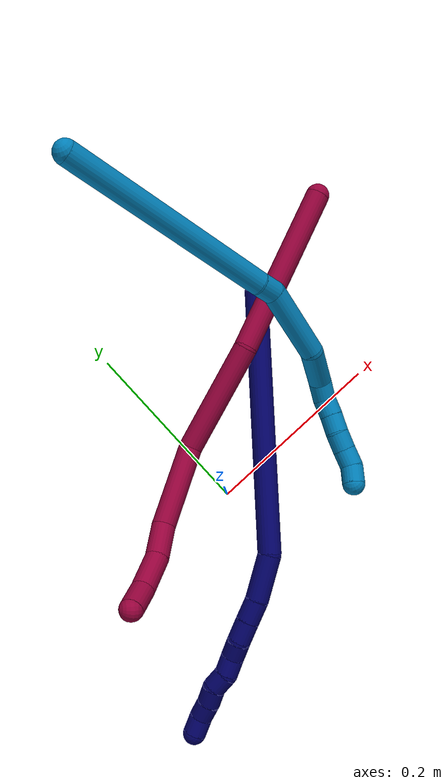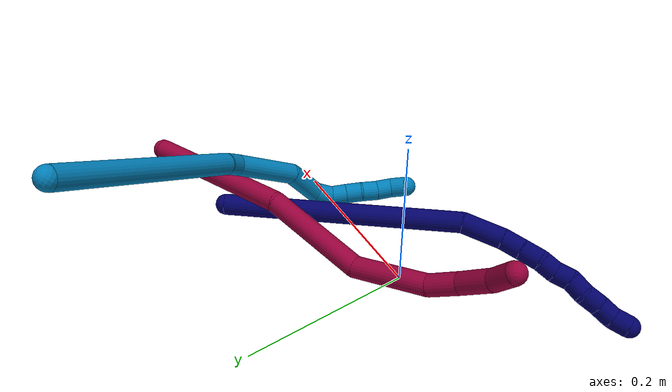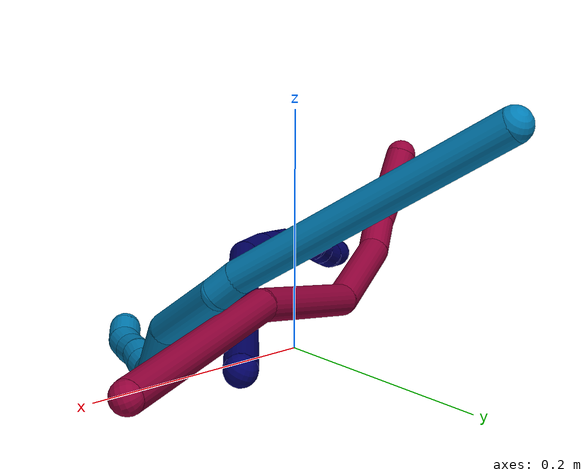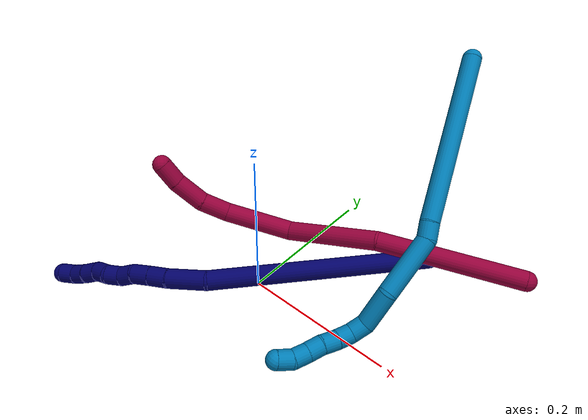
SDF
<sdf version="1.7">
 <world name="default">
  <model name="photoneo_s_sensor">
   <static>1</static>
   <pose>0 0 2 1.57079 1.57079 3.14159</pose>
   <link name="link">
    <inertial><mass>0.1</mass></inertial>
    <sensor name="sensor" type="depth">
     <update_rate>30</update_rate>
     <camera>
      <horizontal_fov>1.22</horizontal_fov>
      <image><width>1920</width><height>1200</height><format>B8G8R8</format></image>
      <clip><near>0.1</near><far>4</far></clip>
      <depth_camera><output>points</output></depth_camera>
     </camera>
     <plugin name="camera_plugin" filename="libgazebo_ros_depth_camera.so">
      <baseline>0.2</baseline>
      <alwaysOn>1</alwaysOn>
      <updateRate>0.0</updateRate>
      <cameraName>camera_ir</cameraName>
      <imageTopicName>/camera/color/image_raw</imageTopicName>
      <cameraInfoTopicName>/camera/color/camera_info</cameraInfoTopicName>
      <depthImageTopicName>/camera/depth/image_raw</depthImageTopicName>
      <depthImageCameraInfoTopicName>/camera/depth/camera_info</depthImageCameraInfoTopicName>
      <pointCloudTopicName>/camera/depth/points</pointCloudTopicName>
      <frameName>fr_optical</frameName>
      <pointCloudCutoff>0.1</pointCloudCutoff>
      <pointCloudCutoffMax>2.0</pointCloudCutoffMax>
      <distortionK1>0</distortionK1>
      <distortionK2>0</distortionK2>
      <distortionK3>0</distortionK3>
      <distortionT1>0</distortionT1>
      <distortionT2>0</distortionT2>
      <CxPrime>0</CxPrime>
      <Cx>0</Cx>
      <Cy>0</Cy>
      <focalLength>0</focalLength>
      <hackBaseline>0</hackBaseline>
     </plugin>
    </sensor>
   </link>
  </model>
  <model name="bin">
   <static>1</static>
   <link name="bottom">
    <collision name="collision-bottom">
     <pose>0 0 -0.01 0 -0 0</pose>
     <geometry><box><size>0.8 0.6 0.02</size></box></geometry>
     <surface>
      <friction><ode><mu>100</mu><mu2>100</mu2></ode></friction>
      <contact><collide_bitmask>65535</collide_bitmask></contact>
     </surface>
    </collision>
   </link>
   <link name="west_wall">
    <collision name="collision-west_wall">
     <pose>-0.41 0 0.1 0 -0 0</pose>
     <geometry><box><size>0.02 0.6 0.2</size></box></geometry>
     <surface>
      <friction><ode><mu>100</mu><mu2>100</mu2></ode></friction>
      <contact><collide_bitmask>65535</collide_bitmask></contact>
     </surface>
    </collision>
   </link>
   <link name="east_wall">
    <collision name="collision-east_wall">
     <pose>0.41 0 0.1 0 -0 0</pose>
     <geometry><box><size>0.02 0.6 0.2</size></box></geometry>
     <surface>
      <friction><ode><mu>100</mu><mu2>100</mu2></ode></friction>
      <contact><collide_bitmask>65535</collide_bitmask></contact>
     </surface>
    </collision>
   </link>
   <link name="south_wall">
    <collision name="collision-south_wall">
     <pose>0 -0.31 0.1 0 -0 0</pose>
     <geometry><box><size>0.8 0.02 0.2</size></box></geometry>
     <surface>
      <friction><ode><mu>100</mu><mu2>100</mu2></ode></friction>
      <contact><collide_bitmask>65535</collide_bitmask></contact>
     </surface>
    </collision>
   </link>
   <link name="north_wall">
    <collision name="collision-north_wall">
     <pose>0 0.31 0.1 0 -0 0</pose>
     <geometry><box><size>0.8 0.02 0.2</size></box></geometry>
     <surface>
      <friction><ode><mu>100</mu><mu2>100</mu2></ode></friction>
      <contact><collide_bitmask>65535</collide_bitmask></contact>
     </surface>
    </collision>
   </link>
  </model>
  <model name="7">
   <static>0</static>
   <link name="7">
    <collision name="collision-cylinder-e_1_1_4">
     <pose>-0.136871 -0.021264 0.024257 0.719749 -1.33934 -0.579042</pose>
     <geometry><cylinder><radius>0.0125</radius><length>0.281242</length></cylinder></geometry>
     <surface>
      <friction><ode><mu>1.16</mu><mu2>1.16</mu2><slip1>0</slip1><slip2>0</slip2></ode></friction>
      <contact><ode><kp>1e+06</kp><kd>1</kd><max_vel>0</max_vel><min_depth>0.001</min_depth></ode></contact>
     </surface>
    </collision>
    <visual name="visual-cylinder-e_1_1_4">
     <pose>-0.136871 -0.021264 0.024257 0.719749 -1.33934 -0.579042</pose>
     <geometry><cylinder><radius>0.0125</radius><length>0.281242</length></cylinder></geometry>
     <material><ambient>0.003922 0 0.403922 1</ambient></material>
    </visual>
    <collision name="collision-cylinder-e_2_4_5">
     <pose>-0.295477 -0.054249 0.051722 1.30365 -1.06102 -0.841761</pose>
     <geometry><cylinder><radius>0.0125</radius><length>0.049804</length></cylinder></geometry>
     <surface>
      <friction><ode><mu>1.16</mu><mu2>1.16</mu2><slip1>0</slip1><slip2>0</slip2></ode></friction>
      <contact><ode><kp>1e+06</kp><kd>1</kd><max_vel>0</max_vel><min_depth>0.001</min_depth></ode></contact>
     </surface>
    </collision>
    <visual name="visual-cylinder-e_2_4_5">
     <pose>-0.295477 -0.054249 0.051722 1.30365 -1.06102 -0.841761</pose>
     <geometry><cylinder><radius>0.0125</radius><length>0.049804</length></cylinder></geometry>
     <material><ambient>0.003922 0 0.403922 1</ambient></material>
    </visual>
    <collision name="collision-cylinder-e_3_5_6">
     <pose>-0.326843 -0.07317 0.056015 1.42108 -0.923397 -0.809051</pose>
     <geometry><cylinder><radius>0.0125</radius><length>0.024146</length></cylinder></geometry>
     <surface>
      <friction><ode><mu>1.16</mu><mu2>1.16</mu2><slip1>0</slip1><slip2>0</slip2></ode></friction>
      <contact><ode><kp>1e+06</kp><kd>1</kd><max_vel>0</max_vel><min_depth>0.001</min_depth></ode></contact>
     </surface>
    </collision>
    <visual name="visual-cylinder-e_3_5_6">
     <pose>-0.326843 -0.07317 0.056015 1.42108 -0.923397 -0.809051</pose>
     <geometry><cylinder><radius>0.0125</radius><length>0.024146</length></cylinder></geometry>
     <material><ambient>0.003922 0 0.403922 1</ambient></material>
    </visual>
    <collision name="collision-cylinder-e_4_6_7">
     <pose>-0.345851 -0.087349 0.05844 1.38125 -0.92228 -0.779233</pose>
     <geometry><cylinder><radius>0.0125</radius><length>0.023532</length></cylinder></geometry>
     <surface>
      <friction><ode><mu>1.16</mu><mu2>1.16</mu2><slip1>0</slip1><slip2>0</slip2></ode></friction>
      <contact><ode><kp>1e+06</kp><kd>1</kd><max_vel>0</max_vel><min_depth>0.001</min_depth></ode></contact>
     </surface>
    </collision>
    <visual name="visual-cylinder-e_4_6_7">
     <pose>-0.345851 -0.087349 0.05844 1.38125 -0.92228 -0.779233</pose>
     <geometry><cylinder><radius>0.0125</radius><length>0.023532</length></cylinder></geometry>
     <material><ambient>0.003922 0 0.403922 1</ambient></material>
    </visual>
    <collision name="collision-cylinder-e_5_7_8">
     <pose>-0.362118 -0.100787 0.06372 1.02302 -0.738676 -0.427939</pose>
     <geometry><cylinder><radius>0.0125</radius><length>0.020467</length></cylinder></geometry>
     <surface>
      <friction><ode><mu>1.16</mu><mu2>1.16</mu2><slip1>0</slip1><slip2>0</slip2></ode></friction>
      <contact><ode><kp>1e+06</kp><kd>1</kd><max_vel>0</max_vel><min_depth>0.001</min_depth></ode></contact>
     </surface>
    </collision>
    <visual name="visual-cylinder-e_5_7_8">
     <pose>-0.362118 -0.100787 0.06372 1.02302 -0.738676 -0.427939</pose>
     <geometry><cylinder><radius>0.0125</radius><length>0.020467</length></cylinder></geometry>
     <material><ambient>0.003922 0 0.403922 1</ambient></material>
    </visual>
    <collision name="collision-cylinder-e_6_8_9">
     <pose>-0.377366 -0.112726 0.068657 1.39092 -0.982979 -0.840282</pose>
     <geometry><cylinder><radius>0.0125</radius><length>0.020088</length></cylinder></geometry>
     <surface>
      <friction><ode><mu>1.16</mu><mu2>1.16</mu2><slip1>0</slip1><slip2>0</slip2></ode></friction>
      <contact><ode><kp>1e+06</kp><kd>1</kd><max_vel>0</max_vel><min_depth>0.001</min_depth></ode></contact>
     </surface>
    </collision>
    <visual name="visual-cylinder-e_6_8_9">
     <pose>-0.377366 -0.112726 0.068657 1.39092 -0.982979 -0.840282</pose>
     <geometry><cylinder><radius>0.0125</radius><length>0.020088</length></cylinder></geometry>
     <material><ambient>0.003922 0 0.403922 1</ambient></material>
    </visual>
    <collision name="collision-cylinder-e_7_9_10">
     <pose>-0.391381 -0.126509 0.070594 1.45799 -0.59513 -0.534666</pose>
     <geometry><cylinder><radius>0.0125</radius><length>0.020182</length></cylinder></geometry>
     <surface>
      <friction><ode><mu>1.16</mu><mu2>1.16</mu2><slip1>0</slip1><slip2>0</slip2></ode></friction>
      <contact><ode><kp>1e+06</kp><kd>1</kd><max_vel>0</max_vel><min_depth>0.001</min_depth></ode></contact>
     </surface>
    </collision>
    <visual name="visual-cylinder-e_7_9_10">
     <pose>-0.391381 -0.126509 0.070594 1.45799 -0.59513 -0.534666</pose>
     <geometry><cylinder><radius>0.0125</radius><length>0.020182</length></cylinder></geometry>
     <material><ambient>0.003922 0 0.403922 1</ambient></material>
    </visual>
    <collision name="collision-cylinder-e_8_10_11">
     <pose>-0.404063 -0.140987 0.075371 1.01486 -0.768287 -0.442143</pose>
     <geometry><cylinder><radius>0.0125</radius><length>0.020217</length></cylinder></geometry>
     <surface>
      <friction><ode><mu>1.16</mu><mu2>1.16</mu2><slip1>0</slip1><slip2>0</slip2></ode></friction>
      <contact><ode><kp>1e+06</kp><kd>1</kd><max_vel>0</max_vel><min_depth>0.001</min_depth></ode></contact>
     </surface>
    </collision>
    <visual name="visual-cylinder-e_8_10_11">
     <pose>-0.404063 -0.140987 0.075371 1.01486 -0.768287 -0.442143</pose>
     <geometry><cylinder><radius>0.0125</radius><length>0.020217</length></cylinder></geometry>
     <material><ambient>0.003922 0 0.403922 1</ambient></material>
    </visual>
    <collision name="collision-cylinder-e_9_11_12">
     <pose>-0.417537 -0.154291 0.082388 1.15114 -0.69046 -0.458493</pose>
     <geometry><cylinder><radius>0.0125</radius><length>0.020254</length></cylinder></geometry>
     <surface>
      <friction><ode><mu>1.16</mu><mu2>1.16</mu2><slip1>0</slip1><slip2>0</slip2></ode></friction>
      <contact><ode><kp>1e+06</kp><kd>1</kd><max_vel>0</max_vel><min_depth>0.001</min_depth></ode></contact>
     </surface>
    </collision>
    <visual name="visual-cylinder-e_9_11_12">
     <pose>-0.417537 -0.154291 0.082388 1.15114 -0.69046 -0.458493</pose>
     <geometry><cylinder><radius>0.0125</radius><length>0.020254</length></cylinder></geometry>
     <material><ambient>0.003922 0 0.403922 1</ambient></material>
    </visual>
    <collision name="collision-cylinder-e_10_12_2">
     <pose>-0.432172 -0.16711 0.086726 1.37012 -0.953845 -0.798961</pose>
     <geometry><cylinder><radius>0.0125</radius><length>0.020069</length></cylinder></geometry>
     <surface>
      <friction><ode><mu>1.16</mu><mu2>1.16</mu2><slip1>0</slip1><slip2>0</slip2></ode></friction>
      <contact><ode><kp>1e+06</kp><kd>1</kd><max_vel>0</max_vel><min_depth>0.001</min_depth></ode></contact>
     </surface>
    </collision>
    <visual name="visual-cylinder-e_10_12_2">
     <pose>-0.432172 -0.16711 0.086726 1.37012 -0.953845 -0.798961</pose>
     <geometry><cylinder><radius>0.0125</radius><length>0.020069</length></cylinder></geometry>
     <material><ambient>0.003922 0 0.403922 1</ambient></material>
    </visual>
    <collision name="collision-sphere-2">
     <pose>-0.440357 -0.172799 0.087884 0 -0 0</pose>
     <geometry><sphere><radius>0.0125</radius></sphere></geometry>
     <surface>
      <friction><ode><mu>1.16</mu><mu2>1.16</mu2><slip1>0</slip1><slip2>0</slip2></ode></friction>
      <contact><ode><kp>1e+06</kp><kd>1</kd><max_vel>0</max_vel><min_depth>0.001</min_depth></ode></contact>
     </surface>
    </collision>
    <visual name="visual-sphere-2">
     <pose>-0.440357 -0.172799 0.087884 0 -0 0</pose>
     <geometry><sphere><radius>0.0125</radius></sphere></geometry>
     <material><ambient>0.003922 0 0.403922 1</ambient></material>
    </visual>
    <collision name="collision-sphere-12">
     <pose>-0.423987 -0.161421 0.085569 0 -0 0</pose>
     <geometry><sphere><radius>0.0125</radius></sphere></geometry>
     <surface>
      <friction><ode><mu>1.16</mu><mu2>1.16</mu2><slip1>0</slip1><slip2>0</slip2></ode></friction>
      <contact><ode><kp>1e+06</kp><kd>1</kd><max_vel>0</max_vel><min_depth>0.001</min_depth></ode></contact>
     </surface>
    </collision>
    <visual name="visual-sphere-12">
     <pose>-0.423987 -0.161421 0.085569 0 -0 0</pose>
     <geometry><sphere><radius>0.0125</radius></sphere></geometry>
     <material><ambient>0.003922 0 0.403922 1</ambient></material>
    </visual>
    <collision name="collision-sphere-11">
     <pose>-0.411088 -0.147161 0.079207 0 -0 0</pose>
     <geometry><sphere><radius>0.0125</radius></sphere></geometry>
     <surface>
      <friction><ode><mu>1.16</mu><mu2>1.16</mu2><slip1>0</slip1><slip2>0</slip2></ode></friction>
      <contact><ode><kp>1e+06</kp><kd>1</kd><max_vel>0</max_vel><min_depth>0.001</min_depth></ode></contact>
     </surface>
    </collision>
    <visual name="visual-sphere-11">
     <pose>-0.411088 -0.147161 0.079207 0 -0 0</pose>
     <geometry><sphere><radius>0.0125</radius></sphere></geometry>
     <material><ambient>0.003922 0 0.403922 1</ambient></material>
    </visual>
    <collision name="collision-sphere-10">
     <pose>-0.397038 -0.134812 0.071534 0 -0 0</pose>
     <geometry><sphere><radius>0.0125</radius></sphere></geometry>
     <surface>
      <friction><ode><mu>1.16</mu><mu2>1.16</mu2><slip1>0</slip1><slip2>0</slip2></ode></friction>
      <contact><ode><kp>1e+06</kp><kd>1</kd><max_vel>0</max_vel><min_depth>0.001</min_depth></ode></contact>
     </surface>
    </collision>
    <visual name="visual-sphere-10">
     <pose>-0.397038 -0.134812 0.071534 0 -0 0</pose>
     <geometry><sphere><radius>0.0125</radius></sphere></geometry>
     <material><ambient>0.003922 0 0.403922 1</ambient></material>
    </visual>
    <collision name="collision-sphere-9">
     <pose>-0.385724 -0.118206 0.069653 0 -0 0</pose>
     <geometry><sphere><radius>0.0125</radius></sphere></geometry>
     <surface>
      <friction><ode><mu>1.16</mu><mu2>1.16</mu2><slip1>0</slip1><slip2>0</slip2></ode></friction>
      <contact><ode><kp>1e+06</kp><kd>1</kd><max_vel>0</max_vel><min_depth>0.001</min_depth></ode></contact>
     </surface>
    </collision>
    <visual name="visual-sphere-9">
     <pose>-0.385724 -0.118206 0.069653 0 -0 0</pose>
     <geometry><sphere><radius>0.0125</radius></sphere></geometry>
     <material><ambient>0.003922 0 0.403922 1</ambient></material>
    </visual>
    <collision name="collision-sphere-4">
     <pose>-0.273742 -0.042528 0.048514 0 -0 0</pose>
     <geometry><sphere><radius>0.0125</radius></sphere></geometry>
     <surface>
      <friction><ode><mu>1.16</mu><mu2>1.16</mu2><slip1>0</slip1><slip2>0</slip2></ode></friction>
      <contact><ode><kp>1e+06</kp><kd>1</kd><max_vel>0</max_vel><min_depth>0.001</min_depth></ode></contact>
     </surface>
    </collision>
    <visual name="visual-sphere-4">
     <pose>-0.273742 -0.042528 0.048514 0 -0 0</pose>
     <geometry><sphere><radius>0.0125</radius></sphere></geometry>
     <material><ambient>0.003922 0 0.403922 1</ambient></material>
    </visual>
    <collision name="collision-sphere-1">
     <geometry><sphere><radius>0.0125</radius></sphere></geometry>
     <surface>
      <friction><ode><mu>1.16</mu><mu2>1.16</mu2><slip1>0</slip1><slip2>0</slip2></ode></friction>
      <contact><ode><kp>1e+06</kp><kd>1</kd><max_vel>0</max_vel><min_depth>0.001</min_depth></ode></contact>
     </surface>
    </collision>
    <visual name="visual-sphere-1">
     <geometry><sphere><radius>0.0125</radius></sphere></geometry>
     <material><ambient>0.003922 0 0.403922 1</ambient></material>
    </visual>
    <collision name="collision-sphere-8">
     <pose>-0.369008 -0.107246 0.06766 0 -0 0</pose>
     <geometry><sphere><radius>0.0125</radius></sphere></geometry>
     <surface>
      <friction><ode><mu>1.16</mu><mu2>1.16</mu2><slip1>0</slip1><slip2>0</slip2></ode></friction>
      <contact><ode><kp>1e+06</kp><kd>1</kd><max_vel>0</max_vel><min_depth>0.001</min_depth></ode></contact>
     </surface>
    </collision>
    <visual name="visual-sphere-8">
     <pose>-0.369008 -0.107246 0.06766 0 -0 0</pose>
     <geometry><sphere><radius>0.0125</radius></sphere></geometry>
     <material><ambient>0.003922 0 0.403922 1</ambient></material>
    </visual>
    <collision name="collision-sphere-5">
     <pose>-0.317213 -0.06597 0.054929 0 -0 0</pose>
     <geometry><sphere><radius>0.0125</radius></sphere></geometry>
     <surface>
      <friction><ode><mu>1.16</mu><mu2>1.16</mu2><slip1>0</slip1><slip2>0</slip2></ode></friction>
      <contact><ode><kp>1e+06</kp><kd>1</kd><max_vel>0</max_vel><min_depth>0.001</min_depth></ode></contact>
     </surface>
    </collision>
    <visual name="visual-sphere-5">
     <pose>-0.317213 -0.06597 0.054929 0 -0 0</pose>
     <geometry><sphere><radius>0.0125</radius></sphere></geometry>
     <material><ambient>0.003922 0 0.403922 1</ambient></material>
    </visual>
    <collision name="collision-sphere-6">
     <pose>-0.336473 -0.08037 0.057102 0 -0 0</pose>
     <geometry><sphere><radius>0.0125</radius></sphere></geometry>
     <surface>
      <friction><ode><mu>1.16</mu><mu2>1.16</mu2><slip1>0</slip1><slip2>0</slip2></ode></friction>
      <contact><ode><kp>1e+06</kp><kd>1</kd><max_vel>0</max_vel><min_depth>0.001</min_depth></ode></contact>
     </surface>
    </collision>
    <visual name="visual-sphere-6">
     <pose>-0.336473 -0.08037 0.057102 0 -0 0</pose>
     <geometry><sphere><radius>0.0125</radius></sphere></geometry>
     <material><ambient>0.003922 0 0.403922 1</ambient></material>
    </visual>
    <collision name="collision-sphere-7">
     <pose>-0.355228 -0.094328 0.059779 0 -0 0</pose>
     <geometry><sphere><radius>0.0125</radius></sphere></geometry>
     <surface>
      <friction><ode><mu>1.16</mu><mu2>1.16</mu2><slip1>0</slip1><slip2>0</slip2></ode></friction>
      <contact><ode><kp>1e+06</kp><kd>1</kd><max_vel>0</max_vel><min_depth>0.001</min_depth></ode></contact>
     </surface>
    </collision>
    <visual name="visual-sphere-7">
     <pose>-0.355228 -0.094328 0.059779 0 -0 0</pose>
     <geometry><sphere><radius>0.0125</radius></sphere></geometry>
     <material><ambient>0.003922 0 0.403922 1</ambient></material>
    </visual>
    <inertial>
     <pose>-0.23486 -0.057428 0.042333 0 -0 0</pose>
     <mass>0.5</mass>
     <inertia><ixx>9.1e-05</ixx><ixy>0</ixy><ixz>0</ixz><iyy>0.00159</iyy><iyz>0</iyz><izz>0.002138</izz></inertia>
    </inertial>
   </link>
   <pose>0.169132 0.137707 0.056574 2.70107 0.237881 0.93938</pose>
  </model>
  <model name="8">
   <static>0</static>
   <link name="8">
    <collision name="collision-cylinder-e_1_1_4">
     <pose>-0.081096 -0.018945 0.037206 0.470979 -1.09535 -0.290621</pose>
     <geometry><cylinder><radius>0.0125</radius><length>0.182425</length></cylinder></geometry>
     <surface>
      <friction><ode><mu>1.16</mu><mu2>1.16</mu2><slip1>0</slip1><slip2>0</slip2></ode></friction>
      <contact><ode><kp>1e+06</kp><kd>1</kd><max_vel>0</max_vel><min_depth>0.001</min_depth></ode></contact>
     </surface>
    </collision>
    <visual name="visual-cylinder-e_1_1_4">
     <pose>-0.081096 -0.018945 0.037206 0.470979 -1.09535 -0.290621</pose>
     <geometry><cylinder><radius>0.0125</radius><length>0.182425</length></cylinder></geometry>
     <material><ambient>0.584314 0 0.227451 1</ambient></material>
    </visual>
    <collision name="collision-cylinder-e_2_4_5">
     <pose>-0.218177 -0.033547 0.096591 -0.19339 -1.18712 0.130707</pose>
     <geometry><cylinder><radius>0.0125</radius><length>0.12075</length></cylinder></geometry>
     <surface>
      <friction><ode><mu>1.16</mu><mu2>1.16</mu2><slip1>0</slip1><slip2>0</slip2></ode></friction>
      <contact><ode><kp>1e+06</kp><kd>1</kd><max_vel>0</max_vel><min_depth>0.001</min_depth></ode></contact>
     </surface>
    </collision>
    <visual name="visual-cylinder-e_2_4_5">
     <pose>-0.218177 -0.033547 0.096591 -0.19339 -1.18712 0.130707</pose>
     <geometry><cylinder><radius>0.0125</radius><length>0.12075</length></cylinder></geometry>
     <material><ambient>0.584314 0 0.227451 1</ambient></material>
    </visual>
    <collision name="collision-cylinder-e_3_5_6">
     <pose>-0.311873 -0.046308 0.134279 0.834291 -1.02138 -0.486727</pose>
     <geometry><cylinder><radius>0.0125</radius><length>0.088434</length></cylinder></geometry>
     <surface>
      <friction><ode><mu>1.16</mu><mu2>1.16</mu2><slip1>0</slip1><slip2>0</slip2></ode></friction>
      <contact><ode><kp>1e+06</kp><kd>1</kd><max_vel>0</max_vel><min_depth>0.001</min_depth></ode></contact>
     </surface>
    </collision>
    <visual name="visual-cylinder-e_3_5_6">
     <pose>-0.311873 -0.046308 0.134279 0.834291 -1.02138 -0.486727</pose>
     <geometry><cylinder><radius>0.0125</radius><length>0.088434</length></cylinder></geometry>
     <material><ambient>0.584314 0 0.227451 1</ambient></material>
    </visual>
    <collision name="collision-cylinder-e_4_6_7">
     <pose>-0.36251 -0.075253 0.15527 1.13717 -0.780813 -0.514273</pose>
     <geometry><cylinder><radius>0.0125</radius><length>0.036735</length></cylinder></geometry>
     <surface>
      <friction><ode><mu>1.16</mu><mu2>1.16</mu2><slip1>0</slip1><slip2>0</slip2></ode></friction>
      <contact><ode><kp>1e+06</kp><kd>1</kd><max_vel>0</max_vel><min_depth>0.001</min_depth></ode></contact>
     </surface>
    </collision>
    <visual name="visual-cylinder-e_4_6_7">
     <pose>-0.36251 -0.075253 0.15527 1.13717 -0.780813 -0.514273</pose>
     <geometry><cylinder><radius>0.0125</radius><length>0.036735</length></cylinder></geometry>
     <material><ambient>0.584314 0 0.227451 1</ambient></material>
    </visual>
    <collision name="collision-cylinder-e_5_7_8">
     <pose>-0.38641 -0.101456 0.170933 0.954199 -0.557322 -0.293664</pose>
     <geometry><cylinder><radius>0.0125</radius><length>0.041489</length></cylinder></geometry>
     <surface>
      <friction><ode><mu>1.16</mu><mu2>1.16</mu2><slip1>0</slip1><slip2>0</slip2></ode></friction>
      <contact><ode><kp>1e+06</kp><kd>1</kd><max_vel>0</max_vel><min_depth>0.001</min_depth></ode></contact>
     </surface>
    </collision>
    <visual name="visual-cylinder-e_5_7_8">
     <pose>-0.38641 -0.101456 0.170933 0.954199 -0.557322 -0.293664</pose>
     <geometry><cylinder><radius>0.0125</radius><length>0.041489</length></cylinder></geometry>
     <material><ambient>0.584314 0 0.227451 1</ambient></material>
    </visual>
    <collision name="collision-cylinder-e_6_8_2">
     <pose>-0.402085 -0.127649 0.189203 0.971002 -0.317089 -0.168321</pose>
     <geometry><cylinder><radius>0.0125</radius><length>0.030167</length></cylinder></geometry>
     <surface>
      <friction><ode><mu>1.16</mu><mu2>1.16</mu2><slip1>0</slip1><slip2>0</slip2></ode></friction>
      <contact><ode><kp>1e+06</kp><kd>1</kd><max_vel>0</max_vel><min_depth>0.001</min_depth></ode></contact>
     </surface>
    </collision>
    <visual name="visual-cylinder-e_6_8_2">
     <pose>-0.402085 -0.127649 0.189203 0.971002 -0.317089 -0.168321</pose>
     <geometry><cylinder><radius>0.0125</radius><length>0.030167</length></cylinder></geometry>
     <material><ambient>0.584314 0 0.227451 1</ambient></material>
    </visual>
    <collision name="collision-sphere-2">
     <pose>-0.406788 -0.139479 0.197293 0 -0 0</pose>
     <geometry><sphere><radius>0.0125</radius></sphere></geometry>
     <surface>
      <friction><ode><mu>1.16</mu><mu2>1.16</mu2><slip1>0</slip1><slip2>0</slip2></ode></friction>
      <contact><ode><kp>1e+06</kp><kd>1</kd><max_vel>0</max_vel><min_depth>0.001</min_depth></ode></contact>
     </surface>
    </collision>
    <visual name="visual-sphere-2">
     <pose>-0.406788 -0.139479 0.197293 0 -0 0</pose>
     <geometry><sphere><radius>0.0125</radius></sphere></geometry>
     <material><ambient>0.584314 0 0.227451 1</ambient></material>
    </visual>
    <collision name="collision-sphere-4">
     <pose>-0.162192 -0.03789 0.074412 0 -0 0</pose>
     <geometry><sphere><radius>0.0125</radius></sphere></geometry>
     <surface>
      <friction><ode><mu>1.16</mu><mu2>1.16</mu2><slip1>0</slip1><slip2>0</slip2></ode></friction>
      <contact><ode><kp>1e+06</kp><kd>1</kd><max_vel>0</max_vel><min_depth>0.001</min_depth></ode></contact>
     </surface>
    </collision>
    <visual name="visual-sphere-4">
     <pose>-0.162192 -0.03789 0.074412 0 -0 0</pose>
     <geometry><sphere><radius>0.0125</radius></sphere></geometry>
     <material><ambient>0.584314 0 0.227451 1</ambient></material>
    </visual>
    <collision name="collision-sphere-1">
     <geometry><sphere><radius>0.0125</radius></sphere></geometry>
     <surface>
      <friction><ode><mu>1.16</mu><mu2>1.16</mu2><slip1>0</slip1><slip2>0</slip2></ode></friction>
      <contact><ode><kp>1e+06</kp><kd>1</kd><max_vel>0</max_vel><min_depth>0.001</min_depth></ode></contact>
     </surface>
    </collision>
    <visual name="visual-sphere-1">
     <geometry><sphere><radius>0.0125</radius></sphere></geometry>
     <material><ambient>0.584314 0 0.227451 1</ambient></material>
    </visual>
    <collision name="collision-sphere-8">
     <pose>-0.397382 -0.115819 0.181113 0 -0 0</pose>
     <geometry><sphere><radius>0.0125</radius></sphere></geometry>
     <surface>
      <friction><ode><mu>1.16</mu><mu2>1.16</mu2><slip1>0</slip1><slip2>0</slip2></ode></friction>
      <contact><ode><kp>1e+06</kp><kd>1</kd><max_vel>0</max_vel><min_depth>0.001</min_depth></ode></contact>
     </surface>
    </collision>
    <visual name="visual-sphere-8">
     <pose>-0.397382 -0.115819 0.181113 0 -0 0</pose>
     <geometry><sphere><radius>0.0125</radius></sphere></geometry>
     <material><ambient>0.584314 0 0.227451 1</ambient></material>
    </visual>
    <collision name="collision-sphere-5">
     <pose>-0.274163 -0.029203 0.11877 0 -0 0</pose>
     <geometry><sphere><radius>0.0125</radius></sphere></geometry>
     <surface>
      <friction><ode><mu>1.16</mu><mu2>1.16</mu2><slip1>0</slip1><slip2>0</slip2></ode></friction>
      <contact><ode><kp>1e+06</kp><kd>1</kd><max_vel>0</max_vel><min_depth>0.001</min_depth></ode></contact>
     </surface>
    </collision>
    <visual name="visual-sphere-5">
     <pose>-0.274163 -0.029203 0.11877 0 -0 0</pose>
     <geometry><sphere><radius>0.0125</radius></sphere></geometry>
     <material><ambient>0.584314 0 0.227451 1</ambient></material>
    </visual>
    <collision name="collision-sphere-6">
     <pose>-0.349582 -0.063413 0.149788 0 -0 0</pose>
     <geometry><sphere><radius>0.0125</radius></sphere></geometry>
     <surface>
      <friction><ode><mu>1.16</mu><mu2>1.16</mu2><slip1>0</slip1><slip2>0</slip2></ode></friction>
      <contact><ode><kp>1e+06</kp><kd>1</kd><max_vel>0</max_vel><min_depth>0.001</min_depth></ode></contact>
     </surface>
    </collision>
    <visual name="visual-sphere-6">
     <pose>-0.349582 -0.063413 0.149788 0 -0 0</pose>
     <geometry><sphere><radius>0.0125</radius></sphere></geometry>
     <material><ambient>0.584314 0 0.227451 1</ambient></material>
    </visual>
    <collision name="collision-sphere-7">
     <pose>-0.375438 -0.087093 0.160752 0 -0 0</pose>
     <geometry><sphere><radius>0.0125</radius></sphere></geometry>
     <surface>
      <friction><ode><mu>1.16</mu><mu2>1.16</mu2><slip1>0</slip1><slip2>0</slip2></ode></friction>
      <contact><ode><kp>1e+06</kp><kd>1</kd><max_vel>0</max_vel><min_depth>0.001</min_depth></ode></contact>
     </surface>
    </collision>
    <visual name="visual-sphere-7">
     <pose>-0.375438 -0.087093 0.160752 0 -0 0</pose>
     <geometry><sphere><radius>0.0125</radius></sphere></geometry>
     <material><ambient>0.584314 0 0.227451 1</ambient></material>
    </visual>
    <inertial>
     <pose>-0.220394 -0.044853 0.097658 0 -0 0</pose>
     <mass>0.5</mass>
     <inertia>
      <ixx>0.000211</ixx>
      <ixy>0</ixy>
      <ixz>0</ixz>
      <iyy>0.000623</iyy>
      <iyz>0</iyz>
      <izz>0.000804</izz>
     </inertia>
    </inertial>
   </link>
   <pose>0.283984 0.166771 0.073201 -1.17158 -0.319455 0.6949</pose>
  </model>
  <model name="9">
   <static>0</static>
   <link name="9">
    <collision name="collision-cylinder-e_1_1_4">
     <pose>0.054776 -0.015616 -0.099277 2.98557 0.499028 2.54631</pose>
     <geometry><cylinder><radius>0.0125</radius><length>0.228912</length></cylinder></geometry>
     <surface>
      <friction><ode><mu>1.16</mu><mu2>1.16</mu2><slip1>0</slip1><slip2>0</slip2></ode></friction>
      <contact><ode><kp>1e+06</kp><kd>1</kd><max_vel>0</max_vel><min_depth>0.001</min_depth></ode></contact>
     </surface>
    </collision>
    <visual name="visual-cylinder-e_1_1_4">
     <pose>0.054776 -0.015616 -0.099277 2.98557 0.499028 2.54631</pose>
     <geometry><cylinder><radius>0.0125</radius><length>0.228912</length></cylinder></geometry>
     <material><ambient>0 0.490196 0.709804 1</ambient></material>
    </visual>
    <collision name="collision-cylinder-e_2_4_5">
     <pose>0.114533 -0.031098 -0.208169 -3.12765 0.478031 -3.08439</pose>
     <geometry><cylinder><radius>0.0125</radius><length>0.02166</length></cylinder></geometry>
     <surface>
      <friction><ode><mu>1.16</mu><mu2>1.16</mu2><slip1>0</slip1><slip2>0</slip2></ode></friction>
      <contact><ode><kp>1e+06</kp><kd>1</kd><max_vel>0</max_vel><min_depth>0.001</min_depth></ode></contact>
     </surface>
    </collision>
    <visual name="visual-cylinder-e_2_4_5">
     <pose>0.114533 -0.031098 -0.208169 -3.12765 0.478031 -3.08439</pose>
     <geometry><cylinder><radius>0.0125</radius><length>0.02166</length></cylinder></geometry>
     <material><ambient>0 0.490196 0.709804 1</ambient></material>
    </visual>
    <collision name="collision-cylinder-e_3_5_6">
     <pose>0.125584 -0.042573 -0.255232 2.84098 0.153563 0.940028</pose>
     <geometry><cylinder><radius>0.0125</radius><length>0.079346</length></cylinder></geometry>
     <surface>
      <friction><ode><mu>1.16</mu><mu2>1.16</mu2><slip1>0</slip1><slip2>0</slip2></ode></friction>
      <contact><ode><kp>1e+06</kp><kd>1</kd><max_vel>0</max_vel><min_depth>0.001</min_depth></ode></contact>
     </surface>
    </collision>
    <visual name="visual-cylinder-e_3_5_6">
     <pose>0.125584 -0.042573 -0.255232 2.84098 0.153563 0.940028</pose>
     <geometry><cylinder><radius>0.0125</radius><length>0.079346</length></cylinder></geometry>
     <material><ambient>0 0.490196 0.709804 1</ambient></material>
    </visual>
    <collision name="collision-cylinder-e_4_6_7">
     <pose>0.129625 -0.0536 -0.316511 -3.11717 -0.084838 2.58122</pose>
     <geometry><cylinder><radius>0.0125</radius><length>0.047848</length></cylinder></geometry>
     <surface>
      <friction><ode><mu>1.16</mu><mu2>1.16</mu2><slip1>0</slip1><slip2>0</slip2></ode></friction>
      <contact><ode><kp>1e+06</kp><kd>1</kd><max_vel>0</max_vel><min_depth>0.001</min_depth></ode></contact>
     </surface>
    </collision>
    <visual name="visual-cylinder-e_4_6_7">
     <pose>0.129625 -0.0536 -0.316511 -3.11717 -0.084838 2.58122</pose>
     <geometry><cylinder><radius>0.0125</radius><length>0.047848</length></cylinder></geometry>
     <material><ambient>0 0.490196 0.709804 1</ambient></material>
    </visual>
    <collision name="collision-cylinder-e_5_7_8">
     <pose>0.126018 -0.058045 -0.349847 2.65516 -0.14582 -0.572552</pose>
     <geometry><cylinder><radius>0.0125</radius><length>0.021736</length></cylinder></geometry>
     <surface>
      <friction><ode><mu>1.16</mu><mu2>1.16</mu2><slip1>0</slip1><slip2>0</slip2></ode></friction>
      <contact><ode><kp>1e+06</kp><kd>1</kd><max_vel>0</max_vel><min_depth>0.001</min_depth></ode></contact>
     </surface>
    </collision>
    <visual name="visual-cylinder-e_5_7_8">
     <pose>0.126018 -0.058045 -0.349847 2.65516 -0.14582 -0.572552</pose>
     <geometry><cylinder><radius>0.0125</radius><length>0.021736</length></cylinder></geometry>
     <material><ambient>0 0.490196 0.709804 1</ambient></material>
    </visual>
    <collision name="collision-cylinder-e_6_8_9">
     <pose>0.124426 -0.070985 -0.365556 2.23565 -0.001276 -0.002621</pose>
     <geometry><cylinder><radius>0.0125</radius><length>0.02011</length></cylinder></geometry>
     <surface>
      <friction><ode><mu>1.16</mu><mu2>1.16</mu2><slip1>0</slip1><slip2>0</slip2></ode></friction>
      <contact><ode><kp>1e+06</kp><kd>1</kd><max_vel>0</max_vel><min_depth>0.001</min_depth></ode></contact>
     </surface>
    </collision>
    <visual name="visual-cylinder-e_6_8_9">
     <pose>0.124426 -0.070985 -0.365556 2.23565 -0.001276 -0.002621</pose>
     <geometry><cylinder><radius>0.0125</radius><length>0.02011</length></cylinder></geometry>
     <material><ambient>0 0.490196 0.709804 1</ambient></material>
    </visual>
    <collision name="collision-cylinder-e_7_9_10">
     <pose>0.123635 -0.087108 -0.377445 2.17652 -0.077778 -0.148281</pose>
     <geometry><cylinder><radius>0.0125</radius><length>0.020034</length></cylinder></geometry>
     <surface>
      <friction><ode><mu>1.16</mu><mu2>1.16</mu2><slip1>0</slip1><slip2>0</slip2></ode></friction>
      <contact><ode><kp>1e+06</kp><kd>1</kd><max_vel>0</max_vel><min_depth>0.001</min_depth></ode></contact>
     </surface>
    </collision>
    <visual name="visual-cylinder-e_7_9_10">
     <pose>0.123635 -0.087108 -0.377445 2.17652 -0.077778 -0.148281</pose>
     <geometry><cylinder><radius>0.0125</radius><length>0.020034</length></cylinder></geometry>
     <material><ambient>0 0.490196 0.709804 1</ambient></material>
    </visual>
    <collision name="collision-cylinder-e_8_10_11">
     <pose>0.122787 -0.102588 -0.39019 2.34143 -0.00686 -0.016221</pose>
     <geometry><cylinder><radius>0.0125</radius><length>0.020266</length></cylinder></geometry>
     <surface>
      <friction><ode><mu>1.16</mu><mu2>1.16</mu2><slip1>0</slip1><slip2>0</slip2></ode></friction>
      <contact><ode><kp>1e+06</kp><kd>1</kd><max_vel>0</max_vel><min_depth>0.001</min_depth></ode></contact>
     </surface>
    </collision>
    <visual name="visual-cylinder-e_8_10_11">
     <pose>0.122787 -0.102588 -0.39019 2.34143 -0.00686 -0.016221</pose>
     <geometry><cylinder><radius>0.0125</radius><length>0.020266</length></cylinder></geometry>
     <material><ambient>0 0.490196 0.709804 1</ambient></material>
    </visual>
    <collision name="collision-cylinder-e_9_11_12">
     <pose>0.12293 -0.117888 -0.403253 2.21288 0.021178 0.042276</pose>
     <geometry><cylinder><radius>0.0125</radius><length>0.020058</length></cylinder></geometry>
     <surface>
      <friction><ode><mu>1.16</mu><mu2>1.16</mu2><slip1>0</slip1><slip2>0</slip2></ode></friction>
      <contact><ode><kp>1e+06</kp><kd>1</kd><max_vel>0</max_vel><min_depth>0.001</min_depth></ode></contact>
     </surface>
    </collision>
    <visual name="visual-cylinder-e_9_11_12">
     <pose>0.12293 -0.117888 -0.403253 2.21288 0.021178 0.042276</pose>
     <geometry><cylinder><radius>0.0125</radius><length>0.020058</length></cylinder></geometry>
     <material><ambient>0 0.490196 0.709804 1</ambient></material>
    </visual>
    <collision name="collision-cylinder-e_10_12_2">
     <pose>0.12041 -0.134808 -0.412972 1.9666 -0.276375 -0.411761</pose>
     <geometry><cylinder><radius>0.0125</radius><length>0.02003</length></cylinder></geometry>
     <surface>
      <friction><ode><mu>1.16</mu><mu2>1.16</mu2><slip1>0</slip1><slip2>0</slip2></ode></friction>
      <contact><ode><kp>1e+06</kp><kd>1</kd><max_vel>0</max_vel><min_depth>0.001</min_depth></ode></contact>
     </surface>
    </collision>
    <visual name="visual-cylinder-e_10_12_2">
     <pose>0.12041 -0.134808 -0.412972 1.9666 -0.276375 -0.411761</pose>
     <geometry><cylinder><radius>0.0125</radius><length>0.02003</length></cylinder></geometry>
     <material><ambient>0 0.490196 0.709804 1</ambient></material>
    </visual>
    <collision name="collision-sphere-2">
     <pose>0.117677 -0.143698 -0.416687 0 -0 0</pose>
     <geometry><sphere><radius>0.0125</radius></sphere></geometry>
     <surface>
      <friction><ode><mu>1.16</mu><mu2>1.16</mu2><slip1>0</slip1><slip2>0</slip2></ode></friction>
      <contact><ode><kp>1e+06</kp><kd>1</kd><max_vel>0</max_vel><min_depth>0.001</min_depth></ode></contact>
     </surface>
    </collision>
    <visual name="visual-sphere-2">
     <pose>0.117677 -0.143698 -0.416687 0 -0 0</pose>
     <geometry><sphere><radius>0.0125</radius></sphere></geometry>
     <material><ambient>0 0.490196 0.709804 1</ambient></material>
    </visual>
    <collision name="collision-sphere-12">
     <pose>0.123143 -0.125918 -0.409258 0 -0 0</pose>
     <geometry><sphere><radius>0.0125</radius></sphere></geometry>
     <surface>
      <friction><ode><mu>1.16</mu><mu2>1.16</mu2><slip1>0</slip1><slip2>0</slip2></ode></friction>
      <contact><ode><kp>1e+06</kp><kd>1</kd><max_vel>0</max_vel><min_depth>0.001</min_depth></ode></contact>
     </surface>
    </collision>
    <visual name="visual-sphere-12">
     <pose>0.123143 -0.125918 -0.409258 0 -0 0</pose>
     <geometry><sphere><radius>0.0125</radius></sphere></geometry>
     <material><ambient>0 0.490196 0.709804 1</ambient></material>
    </visual>
    <collision name="collision-sphere-11">
     <pose>0.122718 -0.109858 -0.397248 0 -0 0</pose>
     <geometry><sphere><radius>0.0125</radius></sphere></geometry>
     <surface>
      <friction><ode><mu>1.16</mu><mu2>1.16</mu2><slip1>0</slip1><slip2>0</slip2></ode></friction>
      <contact><ode><kp>1e+06</kp><kd>1</kd><max_vel>0</max_vel><min_depth>0.001</min_depth></ode></contact>
     </surface>
    </collision>
    <visual name="visual-sphere-11">
     <pose>0.122718 -0.109858 -0.397248 0 -0 0</pose>
     <geometry><sphere><radius>0.0125</radius></sphere></geometry>
     <material><ambient>0 0.490196 0.709804 1</ambient></material>
    </visual>
    <collision name="collision-sphere-10">
     <pose>0.122857 -0.095318 -0.383131 0 -0 0</pose>
     <geometry><sphere><radius>0.0125</radius></sphere></geometry>
     <surface>
      <friction><ode><mu>1.16</mu><mu2>1.16</mu2><slip1>0</slip1><slip2>0</slip2></ode></friction>
      <contact><ode><kp>1e+06</kp><kd>1</kd><max_vel>0</max_vel><min_depth>0.001</min_depth></ode></contact>
     </surface>
    </collision>
    <visual name="visual-sphere-10">
     <pose>0.122857 -0.095318 -0.383131 0 -0 0</pose>
     <geometry><sphere><radius>0.0125</radius></sphere></geometry>
     <material><ambient>0 0.490196 0.709804 1</ambient></material>
    </visual>
    <collision name="collision-sphere-9">
     <pose>0.124414 -0.078898 -0.371759 0 -0 0</pose>
     <geometry><sphere><radius>0.0125</radius></sphere></geometry>
     <surface>
      <friction><ode><mu>1.16</mu><mu2>1.16</mu2><slip1>0</slip1><slip2>0</slip2></ode></friction>
      <contact><ode><kp>1e+06</kp><kd>1</kd><max_vel>0</max_vel><min_depth>0.001</min_depth></ode></contact>
     </surface>
    </collision>
    <visual name="visual-sphere-9">
     <pose>0.124414 -0.078898 -0.371759 0 -0 0</pose>
     <geometry><sphere><radius>0.0125</radius></sphere></geometry>
     <material><ambient>0 0.490196 0.709804 1</ambient></material>
    </visual>
    <collision name="collision-sphere-4">
     <pose>0.109551 -0.031232 -0.198554 0 -0 0</pose>
     <geometry><sphere><radius>0.0125</radius></sphere></geometry>
     <surface>
      <friction><ode><mu>1.16</mu><mu2>1.16</mu2><slip1>0</slip1><slip2>0</slip2></ode></friction>
      <contact><ode><kp>1e+06</kp><kd>1</kd><max_vel>0</max_vel><min_depth>0.001</min_depth></ode></contact>
     </surface>
    </collision>
    <visual name="visual-sphere-4">
     <pose>0.109551 -0.031232 -0.198554 0 -0 0</pose>
     <geometry><sphere><radius>0.0125</radius></sphere></geometry>
     <material><ambient>0 0.490196 0.709804 1</ambient></material>
    </visual>
    <collision name="collision-sphere-1">
     <geometry><sphere><radius>0.0125</radius></sphere></geometry>
     <surface>
      <friction><ode><mu>1.16</mu><mu2>1.16</mu2><slip1>0</slip1><slip2>0</slip2></ode></friction>
      <contact><ode><kp>1e+06</kp><kd>1</kd><max_vel>0</max_vel><min_depth>0.001</min_depth></ode></contact>
     </surface>
    </collision>
    <visual name="visual-sphere-1">
     <geometry><sphere><radius>0.0125</radius></sphere></geometry>
     <material><ambient>0 0.490196 0.709804 1</ambient></material>
    </visual>
    <collision name="collision-sphere-8">
     <pose>0.124439 -0.063071 -0.359353 0 -0 0</pose>
     <geometry><sphere><radius>0.0125</radius></sphere></geometry>
     <surface>
      <friction><ode><mu>1.16</mu><mu2>1.16</mu2><slip1>0</slip1><slip2>0</slip2></ode></friction>
      <contact><ode><kp>1e+06</kp><kd>1</kd><max_vel>0</max_vel><min_depth>0.001</min_depth></ode></contact>
     </surface>
    </collision>
    <visual name="visual-sphere-8">
     <pose>0.124439 -0.063071 -0.359353 0 -0 0</pose>
     <geometry><sphere><radius>0.0125</radius></sphere></geometry>
     <material><ambient>0 0.490196 0.709804 1</ambient></material>
    </visual>
    <collision name="collision-sphere-5">
     <pose>0.119515 -0.030964 -0.217784 0 -0 0</pose>
     <geometry><sphere><radius>0.0125</radius></sphere></geometry>
     <surface>
      <friction><ode><mu>1.16</mu><mu2>1.16</mu2><slip1>0</slip1><slip2>0</slip2></ode></friction>
      <contact><ode><kp>1e+06</kp><kd>1</kd><max_vel>0</max_vel><min_depth>0.001</min_depth></ode></contact>
     </surface>
    </collision>
    <visual name="visual-sphere-5">
     <pose>0.119515 -0.030964 -0.217784 0 -0 0</pose>
     <geometry><sphere><radius>0.0125</radius></sphere></geometry>
     <material><ambient>0 0.490196 0.709804 1</ambient></material>
    </visual>
    <collision name="collision-sphere-6">
     <pose>0.131652 -0.054182 -0.29268 0 -0 0</pose>
     <geometry><sphere><radius>0.0125</radius></sphere></geometry>
     <surface>
      <friction><ode><mu>1.16</mu><mu2>1.16</mu2><slip1>0</slip1><slip2>0</slip2></ode></friction>
      <contact><ode><kp>1e+06</kp><kd>1</kd><max_vel>0</max_vel><min_depth>0.001</min_depth></ode></contact>
     </surface>
    </collision>
    <visual name="visual-sphere-6">
     <pose>0.131652 -0.054182 -0.29268 0 -0 0</pose>
     <geometry><sphere><radius>0.0125</radius></sphere></geometry>
     <material><ambient>0 0.490196 0.709804 1</ambient></material>
    </visual>
    <collision name="collision-sphere-7">
     <pose>0.127598 -0.053018 -0.340341 0 -0 0</pose>
     <geometry><sphere><radius>0.0125</radius></sphere></geometry>
     <surface>
      <friction><ode><mu>1.16</mu><mu2>1.16</mu2><slip1>0</slip1><slip2>0</slip2></ode></friction>
      <contact><ode><kp>1e+06</kp><kd>1</kd><max_vel>0</max_vel><min_depth>0.001</min_depth></ode></contact>
     </surface>
    </collision>
    <visual name="visual-sphere-7">
     <pose>0.127598 -0.053018 -0.340341 0 -0 0</pose>
     <geometry><sphere><radius>0.0125</radius></sphere></geometry>
     <material><ambient>0 0.490196 0.709804 1</ambient></material>
    </visual>
    <inertial>
     <pose>0.092541 -0.043538 -0.218832 0 -0 0</pose>
     <mass>0.5</mass>
     <inertia>
      <ixx>-0.000164</ixx>
      <ixy>0</ixy>
      <ixz>0</ixz>
      <iyy>0.001374</iyy>
      <iyz>0</iyz>
      <izz>-0.000364</izz>
     </inertia>
    </inertial>
   </link>
   <pose>0.095657 0.310735 0.243332 -0.657181 -0.130755 -0.348241</pose>
  </model>
 </world>
</sdf>
